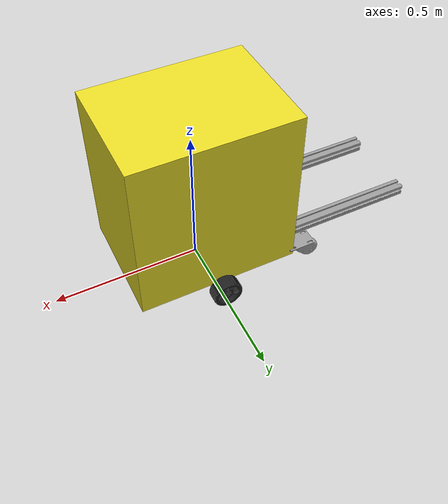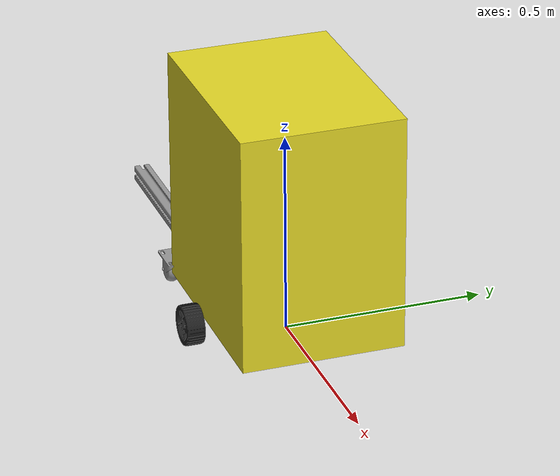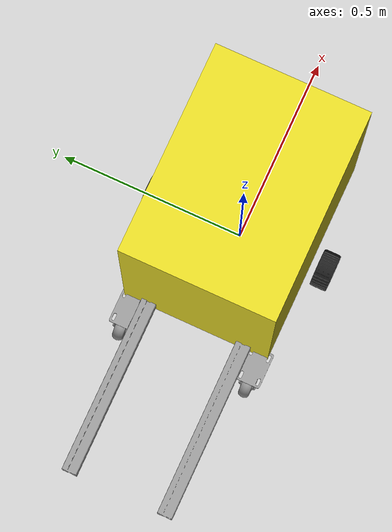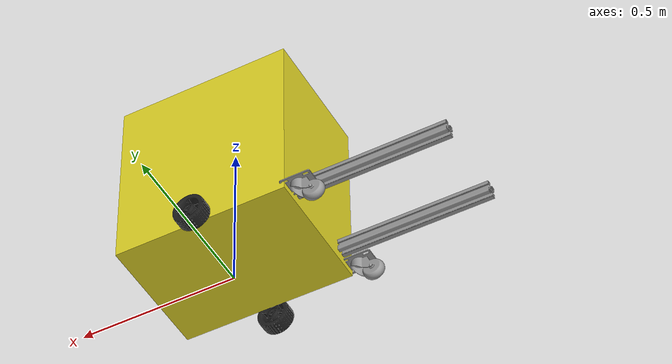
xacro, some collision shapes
<?xml version="1.0"?>
<robot xmlns:xacro="http://www.ros.org/wiki/xacro" name="forklift">

  <!-- Meshes: override mesh_dir from launch with file:// for Gazebo visibility -->
  <xacro:arg name="mesh_dir" default="package://custom_warehouse_robot_description/meshes"/>
  <xacro:property name="model_yaw" value="${pi/2}"/>
  <xacro:property name="mesh_dir" value="$(arg mesh_dir)"/>

  <!-- Fusion world position (m) of the wheel-axle midpoint = base_link origin -->
  <xacro:property name="p0x" value="0.21"/>
  <xacro:property name="p0y" value="-0.105"/>
  <xacro:property name="p0z" value="-0.02"/>

  <!-- Wheels: 100 mm diameter, 45 mm wide, track 0.48 m -->
  <xacro:property name="wheel_r" value="0.05"/>
  <xacro:property name="wheel_w" value="0.045"/>

  <!-- Casters: wheel centre + rigid stem pivot (swivel about Z at the rod) -->
  <xacro:property name="caster_y" value="0.245"/>
  <xacro:property name="caster_z" value="-0.0481"/>
  <!-- Stem/rod mount on chassis — MUST be the swivel axis so the rod stays rigid -->
  <xacro:property name="caster_stem_z" value="-0.010"/>
  <xacro:property name="caster_r" value="0.0219"/>

  <!-- Fork slider origin (Fusion Slider 48) -->
  <xacro:property name="fx" value="0.2095"/>
  <xacro:property name="fy" value="0.037"/>
  <xacro:property name="fz" value="0.1123"/>
  <!-- Limits measured from the pose the meshes were exported in.
       Export with the carriage at its LOWER limit (-0.1 in Fusion) -> 0 .. 0.3 -->
  <xacro:property name="fork_lower" value="0.0"/>
  <xacro:property name="fork_upper" value="0.3"/>

  <!-- Masses (kg). Fusion values come from default materials (steel).
       TODO: replace with weighed values. -->
  <xacro:property name="chassis_mass" value="32.9895"/>
  <xacro:property name="wheel_mass" value="1.9402"/>
  <xacro:property name="fork_mass" value="2.3717"/>
  <xacro:property name="caster_mass" value="0.1227"/>
  <xacro:property name="lidar_mass" value="0.1"/>
  <xacro:property name="imu_mass" value="0.001"/>
  <!-- Chassis box for inertia. TODO: use size from mesh_report.txt (base_link) -->
  <xacro:property name="chassis_x" value="0.40"/>
  <xacro:property name="chassis_y" value="0.544"/>
  <xacro:property name="chassis_z" value="0.585"/>

  <!-- ================= MACROS ================= -->
  <xacro:macro name="box_inertial" params="m x y z cx cy cz">
    <inertial>
      <origin xyz="${cx} ${cy} ${cz}" rpy="0 0 0"/>
      <mass value="${m}"/>
      <inertia ixx="${m*(y*y+z*z)/12}" ixy="0" ixz="0"
               iyy="${m*(x*x+z*z)/12}" iyz="0"
               izz="${m*(x*x+y*y)/12}"/>
    </inertial>
  </xacro:macro>

  <!-- px,py,pz = Fusion world position of the link frame origin -->
  <xacro:macro name="mesh_visual" params="file px py pz">
    <visual>
      <origin xyz="${-px} ${-py} ${-pz}" rpy="0 0 0"/>
      <geometry><mesh filename="${mesh_dir}/${file}.stl"/></geometry>
    </visual>
  </xacro:macro>

  <xacro:macro name="mesh_collision" params="file px py pz">
    <collision>
      <origin xyz="${-px} ${-py} ${-pz}" rpy="0 0 0"/>
      <geometry><mesh filename="${mesh_dir}/${file}.stl"/></geometry>
    </collision>
  </xacro:macro>

  <xacro:macro name="wheel" params="name mesh px">
    <link name="${name}">
      <xacro:mesh_visual file="${mesh}" px="${px}" py="${p0y}" pz="${p0z}"/>
      <collision>
        <origin xyz="0 0 0" rpy="0 ${pi/2} 0"/>
        <geometry><cylinder radius="${wheel_r}" length="${wheel_w}"/></geometry>
      </collision>
      <inertial>
        <mass value="${wheel_mass}"/>
        <inertia ixx="${wheel_mass*wheel_r*wheel_r/2}" ixy="0" ixz="0"
                 iyy="${wheel_mass*(3*wheel_r*wheel_r+wheel_w*wheel_w)/12}" iyz="0"
                 izz="${wheel_mass*(3*wheel_r*wheel_r+wheel_w*wheel_w)/12}"/>
      </inertial>
    </link>
    <joint name="${name}_joint" type="continuous">
      <parent link="chassis"/>
      <child link="${name}"/>
      <origin xyz="${px-p0x} 0 0" rpy="0 0 0"/>
      <!-- same axis for both wheels = ROS +Y, so positive velocity drives forward -->
      <axis xyz="${sin(model_yaw)} ${cos(model_yaw)} 0"/>
      <!-- Enough damping to stop free-roll when cmd_vel is zero -->
      <dynamics damping="0.8" friction="0.15"/>
    </joint>
  </xacro:macro>

  <!-- Swivel caster: yaw about the rigid stem/rod (NOT the wheel centre).
       Wheel is a fixed offset below the stem so the rod cannot detach. -->
  <xacro:macro name="caster" params="name mesh px">
    <link name="${name}_yaw">
      <inertial>
        <mass value="0.05"/>
        <inertia ixx="2e-5" iyy="2e-5" izz="2e-5" ixy="0" ixz="0" iyz="0"/>
      </inertial>
    </link>
    <joint name="${name}_swivel_joint" type="continuous">
      <parent link="chassis"/>
      <child link="${name}_yaw"/>
      <origin xyz="${px-p0x} ${caster_y-p0y} ${caster_stem_z-p0z}" rpy="0 0 0"/>
      <axis xyz="0 0 1"/>
      <!-- Higher damping: stops settle-kick and keeps stem feeling rigid -->
      <dynamics damping="1.5" friction="0.2"/>
    </joint>
    <link name="${name}">
      <!-- Mesh authored in Fusion world frame; keep that offset from stem frame -->
      <visual>
        <origin xyz="${-px} ${-caster_y} ${-caster_stem_z}" rpy="0 0 0"/>
        <geometry><mesh filename="${mesh_dir}/${mesh}.stl"/></geometry>
      </visual>
      <collision>
        <origin xyz="0 0 ${caster_z - caster_stem_z}" rpy="0 0 0"/>
        <geometry><sphere radius="${caster_r}"/></geometry>
      </collision>
      <inertial>
        <origin xyz="0 0 ${caster_z - caster_stem_z}" rpy="0 0 0"/>
        <mass value="${caster_mass}"/>
        <inertia ixx="${0.4*caster_mass*caster_r*caster_r}" ixy="0" ixz="0"
                 iyy="${0.4*caster_mass*caster_r*caster_r}" iyz="0"
                 izz="${0.4*caster_mass*caster_r*caster_r}"/>
      </inertial>
    </link>
    <!-- Wheel body rigidly bolted to the swivel fork/rod -->
    <joint name="${name}_joint" type="fixed">
      <parent link="${name}_yaw"/>
      <child link="${name}"/>
      <origin xyz="0 0 0" rpy="0 0 0"/>
    </joint>
  </xacro:macro>

  <!-- ================= BASE ================= -->
  <link name="base_footprint"/>
  <joint name="base_footprint_joint" type="fixed">
    <parent link="base_footprint"/>
    <child link="base_link"/>
    <origin xyz="0 0 ${wheel_r}" rpy="0 0 0"/>
  </joint>

  <!-- base_link: ROS-aligned frame at the wheel-axle midpoint, no geometry -->
  <link name="base_link"/>
  <joint name="chassis_joint" type="fixed">
    <parent link="base_link"/>
    <child link="chassis"/>
    <origin xyz="0 0 0" rpy="0 0 ${model_yaw}"/>
  </joint>

  <!-- chassis: Fusion-aligned frame at the same point; carries the big mesh -->
  <link name="chassis">
    <xacro:mesh_visual file="base_link" px="${p0x}" py="${p0y}" pz="${p0z}"/>
    <!-- Box collision (mesh collision is too heavy for Gazebo realtime) -->
    <collision>
      <origin xyz="0 0 ${chassis_z/2}" rpy="0 0 0"/>
      <geometry><box size="${chassis_x} ${chassis_y} ${chassis_z}"/></geometry>
    </collision>
    <xacro:box_inertial m="${chassis_mass}" x="${chassis_x}" y="${chassis_y}" z="${chassis_z}"
                        cx="-0.0002" cy="0.0117" cz="0.1748"/>
  </link>

  <!-- ================= WHEELS =================
       Forks at rear (model_yaw=+pi/2): Fusion left/right match ROS left/right. -->
  <xacro:wheel name="left_wheel"  mesh="left_wheel"  px="0.45"/>
  <xacro:wheel name="right_wheel" mesh="right_wheel" px="-0.03"/>

  <!-- ================= CASTERS ================= -->
  <xacro:caster name="caster_left"  mesh="caster_left"  px="0.3846"/>
  <xacro:caster name="caster_right" mesh="caster_right" px="0.0304"/>

  <!-- ================= FORK CARRIAGE ================= -->
  <link name="fork_carriage">
    <xacro:mesh_visual file="fork_carriage" px="${fx}" py="${fy}" pz="${fz}"/>
    <collision>
      <origin xyz="0 ${0.24} ${-0.03}" rpy="0 0 0"/>
      <geometry><box size="0.306 0.617 0.08"/></geometry>
    </collision>
    <xacro:box_inertial m="${fork_mass}" x="0.306" y="0.617" z="0.136"
                        cx="0" cy="0.2403" cz="-0.0606"/>
  </link>
  <joint name="fork_lift_joint" type="prismatic">
    <parent link="chassis"/>
    <child link="fork_carriage"/>
    <origin xyz="${fx-p0x} ${fy-p0y} ${fz-p0z}" rpy="0 0 0"/>
    <axis xyz="0 0 1"/>
    <limit lower="${fork_lower}" upper="${fork_upper}" effort="100" velocity="0.05"/>
  </joint>

  <!-- ================= LIDAR =================
       Rotate the FULL mesh assembly 180° yaw (housing + mounting sticks together).
       lidar_link keeps Fusion→ROS align relative to that flipped mesh. -->
  <link name="lidar_base">
    <xacro:mesh_visual file="lidar_link" px="0.2093" py="-0.1107" pz="0.3437"/>
    <collision>
      <origin xyz="0 0 0" rpy="0 0 0"/>
      <geometry><box size="0.0605 0.096 0.048"/></geometry>
    </collision>
    <xacro:box_inertial m="${lidar_mass}" x="0.0605" y="0.096" z="0.048" cx="0" cy="0" cz="0"/>
  </link>
  <joint name="lidar_base_joint" type="fixed">
    <parent link="chassis"/>
    <child link="lidar_base"/>
    <origin xyz="${0.2093-p0x} ${-0.1107-p0y} ${0.3437-p0z}" rpy="0 0 ${pi}"/>
  </joint>
  <link name="lidar_link"/>
  <joint name="lidar_joint" type="fixed">
    <parent link="lidar_base"/>
    <child link="lidar_link"/>
    <origin xyz="0 0 0" rpy="0 0 ${-model_yaw}"/>
  </joint>

  <!-- ================= IMU ================= -->
  <link name="imu_base">
    <xacro:mesh_visual file="imu_link" px="0.2097" py="-0.1143" pz="0.3111"/>
    <xacro:box_inertial m="${imu_mass}" x="0.028" y="0.0324" z="0.0137" cx="0" cy="0" cz="0"/>
  </link>
  <joint name="imu_base_joint" type="fixed">
    <parent link="chassis"/>
    <child link="imu_base"/>
    <origin xyz="${0.2097-p0x} ${-0.1143-p0y} ${0.3111-p0z}" rpy="0 0 0"/>
  </joint>
  <link name="imu_link"/>
  <joint name="imu_joint" type="fixed">
    <parent link="imu_base"/>
    <child link="imu_link"/>
    <origin xyz="0 0 0" rpy="0 0 ${-model_yaw}"/>
  </joint>

  <!-- Gazebo simulation plugins (diff drive, lidar, imu) -->
  <xacro:include filename="forklift_gazebo.xacro"/>

</robot>
